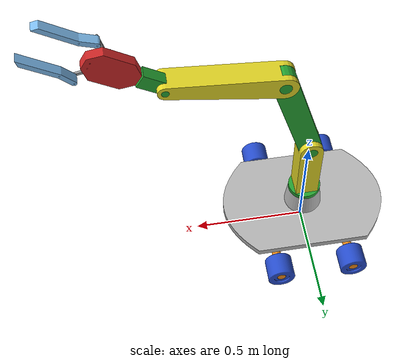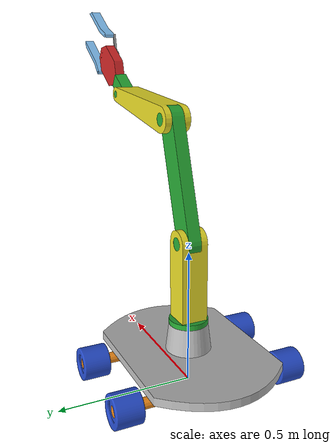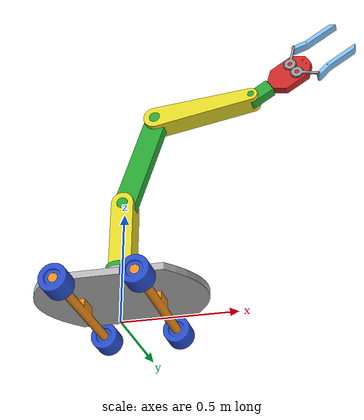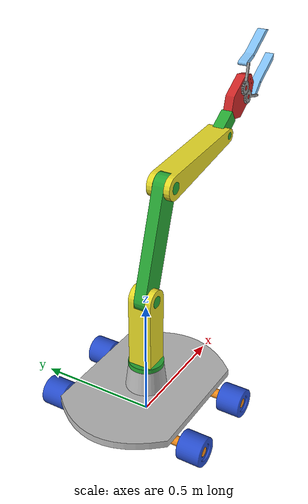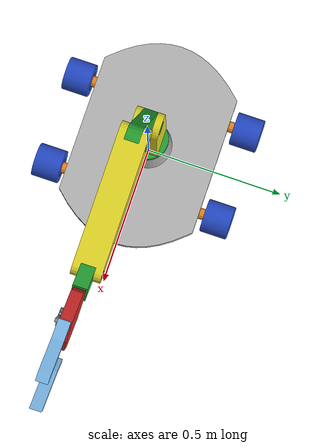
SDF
<sdf version='1.6'>
  <model name='bot_manipulator'>
    <link name='base_link'>
      <pose frame=''>0 0 0 0 -0 0</pose>
      <inertial>
        <pose frame=''>-1e-06 -0 0.115027 0 -0 0</pose>
        <mass>13.7757</mass>
        <inertia>
          <ixx>0.282538</ixx>
          <ixy>2.82691e-07</ixy>
          <ixz>-3.15508e-08</ixz>
          <iyy>0.453469</iyy>
          <iyz>8.6532e-08</iyz>
          <izz>0.707941</izz>
        </inertia>
      </inertial>
      <collision name='base_link_bot_collision'>
        <pose frame=''>0 0 0.1 0 -0 0</pose>
        <geometry>
          <mesh>
            <scale>1 1 1</scale>
            <uri>model://flip1_description/meshes/base_link_bot.STL</uri>
          </mesh>
        </geometry>
      </collision>
      <collision name='base_link_arm_collision_1'>
        <pose frame=''>0 0 0.13 0 -0 0</pose>
        <geometry>
          <mesh>
            <scale>1 1 1</scale>
            <uri>model://flip1_description/meshes/base_link_arm.STL</uri>
          </mesh>
        </geometry>
      </collision>
      <collision name='base_link_fixed_joint_lump__link1_collision_2'>
        <pose frame=''>0.16597 0.36 0.06 0 -0 0</pose>
        <geometry>
          <mesh>
            <scale>1 1 1</scale>
            <uri>model://flip1_description/meshes/link1.STL</uri>
          </mesh>
        </geometry>
        <surface>
          <contact>
            <ode/>
          </contact>
          <friction>
            <ode/>
          </friction>
        </surface>
      </collision>
      <collision name='base_link_fixed_joint_lump__link2_collision_3'>
        <pose frame=''>-0.16597 0.36 0.06 0 -0 0</pose>
        <geometry>
          <mesh>
            <scale>1 1 1</scale>
            <uri>model://flip1_description/meshes/link2.STL</uri>
          </mesh>
        </geometry>
        <surface>
          <contact>
            <ode/>
          </contact>
          <friction>
            <ode/>
          </friction>
        </surface>
      </collision>
      <visual name='base_link_bot_visual'>
        <pose frame=''>0 0 0.1 0 -0 0</pose>
        <geometry>
          <mesh>
            <scale>1 1 1</scale>
            <uri>model://flip1_description/meshes/base_link_bot.STL</uri>
          </mesh>
        </geometry>
      </visual>
      <visual name='base_link_arm_visual_1'>
        <pose frame=''>0 0 0.13 0 -0 0</pose>
        <geometry>
          <mesh>
            <scale>1 1 1</scale>
            <uri>model://flip1_description/meshes/base_link_arm.STL</uri>
          </mesh>
        </geometry>
      </visual>
      <visual name='base_link_fixed_joint_lump__link1_visual_2'>
        <pose frame=''>0.16597 0.36 0.06 0 -0 0</pose>
        <geometry>
          <mesh>
            <scale>1 1 1</scale>
            <uri>model://flip1_description/meshes/link1.STL</uri>
          </mesh>
        </geometry>
        <material>
          <script>
            <name>Gazebo/Orange</name>
            <uri>file://media/materials/scripts/gazebo.material</uri>
          </script>
        </material>
      </visual>
      <visual name='base_link_fixed_joint_lump__link2_visual_3'>
        <pose frame=''>-0.16597 0.36 0.06 0 -0 0</pose>
        <geometry>
          <mesh>
            <scale>1 1 1</scale>
            <uri>model://flip1_description/meshes/link2.STL</uri>
          </mesh>
        </geometry>
        <material>
          <script>
            <name>Gazebo/Orange</name>
            <uri>file://media/materials/scripts/gazebo.material</uri>
          </script>
        </material>
      </visual>
      <velocity_decay/>
      <velocity_decay/>
      <velocity_decay/>
      <gravity>1</gravity>
      <velocity_decay/>
      <self_collide>0</self_collide>
    </link>
    <link name='rotation_link'>
      <pose frame=''>0 0 0.21 0 -0 0.007562</pose>
      <inertial>
        <pose frame=''>0 0 0.157934 0 -0 0</pose>
        <mass>3.25564</mass>
        <inertia>
          <ixx>0.0337016</ixx>
          <ixy>2.3463e-19</ixy>
          <ixz>1.54429e-18</ixz>
          <iyy>0.0335546</iyy>
          <iyz>5.72319e-19</iyz>
          <izz>0.00594155</izz>
        </inertia>
      </inertial>
      <collision name='rotation_link_collision'>
        <pose frame=''>0 0 0 0 -0 0</pose>
        <geometry>
          <mesh>
            <scale>1 1 1</scale>
            <uri>model://flip1_description/meshes/rotation_link.STL</uri>
          </mesh>
        </geometry>
        <surface>
          <contact>
            <ode/>
          </contact>
          <friction>
            <ode/>
          </friction>
        </surface>
      </collision>
      <collision name='rotation_link_fixed_joint_lump__vertical_link_collision_1'>
        <pose frame=''>0 0 0.03 0 -0 0</pose>
        <geometry>
          <mesh>
            <scale>1 1 1</scale>
            <uri>model://flip1_description/meshes/vertical_link.STL</uri>
          </mesh>
        </geometry>
        <surface>
          <contact>
            <ode/>
          </contact>
          <friction>
            <ode/>
          </friction>
        </surface>
      </collision>
      <visual name='rotation_link_visual'>
        <pose frame=''>0 0 0 0 -0 0</pose>
        <geometry>
          <mesh>
            <scale>1 1 1</scale>
            <uri>model://flip1_description/meshes/rotation_link.STL</uri>
          </mesh>
        </geometry>
        <material>
          <script>
            <name>Gazebo/Green</name>
            <uri>file://media/materials/scripts/gazebo.material</uri>
          </script>
        </material>
      </visual>
      <visual name='rotation_link_fixed_joint_lump__vertical_link_visual_1'>
        <pose frame=''>0 0 0.03 0 -0 0</pose>
        <geometry>
          <mesh>
            <scale>1 1 1</scale>
            <uri>model://flip1_description/meshes/vertical_link.STL</uri>
          </mesh>
        </geometry>
        <material>
          <script>
            <name>Gazebo/Yellow</name>
            <uri>file://media/materials/scripts/gazebo.material</uri>
          </script>
        </material>
      </visual>
      <velocity_decay/>
      <gravity>1</gravity>
      <velocity_decay/>
      <self_collide>0</self_collide>
    </link>
    <joint name='base_rotation_joint' type='revolute'>
      <child>rotation_link</child>
      <parent>base_link</parent>
      <axis>
        <xyz>0 0 -1</xyz>
        <limit>
          <lower>-1e+16</lower>
          <upper>1e+16</upper>
        </limit>
        <dynamics>
          <spring_reference>0</spring_reference>
          <spring_stiffness>0</spring_stiffness>
        </dynamics>
        <use_parent_model_frame>1</use_parent_model_frame>
      </axis>
    </joint>
    <link name='middle_arm_link'>
      <pose frame=''>0 0 0.54 0 0.31039 0.007562</pose>
      <inertial>
        <pose frame=''>0 -0 0.225 0 -0 0</pose>
        <mass>2.839</mass>
        <inertia>
          <ixx>0.072652</ixx>
          <ixy>-5.421e-20</ixy>
          <ixz>-7.9676e-19</ixz>
          <iyy>0.073967</iyy>
          <iyz>9.8764e-19</iyz>
          <izz>0.002988</izz>
        </inertia>
      </inertial>
      <collision name='middle_arm_link_collision'>
        <pose frame=''>0 0 0 0 -0 0</pose>
        <geometry>
          <mesh>
            <scale>1 1 1</scale>
            <uri>model://flip1_description/meshes/middle_arm_link.STL</uri>
          </mesh>
        </geometry>
        <surface>
          <contact>
            <ode/>
          </contact>
          <friction>
            <ode/>
          </friction>
        </surface>
      </collision>
      <visual name='middle_arm_link_visual'>
        <pose frame=''>0 0 0 0 -0 0</pose>
        <geometry>
          <mesh>
            <scale>1 1 1</scale>
            <uri>model://flip1_description/meshes/middle_arm_link.STL</uri>
          </mesh>
        </geometry>
        <material>
          <script>
            <name>Gazebo/Green</name>
            <uri>file://media/materials/scripts/gazebo.material</uri>
          </script>
        </material>
      </visual>
      <gravity>1</gravity>
      <velocity_decay/>
      <self_collide>0</self_collide>
    </link>
    <joint name='vertical_middle_arm_joint' type='revolute'>
      <child>middle_arm_link</child>
      <parent>rotation_link</parent>
      <axis>
        <xyz>0.007562 -0.999971 -0</xyz>
        <limit>
          <lower>-3.14</lower>
          <upper>3.14</upper>
          <effort>25</effort>
          <velocity>1</velocity>
        </limit>
        <dynamics>
          <spring_reference>0</spring_reference>
          <spring_stiffness>0</spring_stiffness>
        </dynamics>
        <use_parent_model_frame>1</use_parent_model_frame>
      </axis>
    </joint>
    <link name='end_link'>
      <pose frame=''>0.13744 0.001039 0.968497 0 1.44299 0.007562</pose>
      <inertial>
        <pose frame=''>0 0 0.20744 0 -0 0</pose>
        <mass>3.4568</mass>
        <inertia>
          <ixx>0.060655</ixx>
          <ixy>7.1828e-19</ixy>
          <ixz>4.0707e-18</ixz>
          <iyy>0.059517</iyy>
          <iyz>-2.6631e-18</iyz>
          <izz>0.0051642</izz>
        </inertia>
      </inertial>
      <collision name='end_link_collision'>
        <pose frame=''>0 0 0 0 -0 0</pose>
        <geometry>
          <mesh>
            <scale>1 1 1</scale>
            <uri>model://flip1_description/meshes/end_link.STL</uri>
          </mesh>
        </geometry>
        <surface>
          <contact>
            <ode/>
          </contact>
          <friction>
            <ode/>
          </friction>
        </surface>
      </collision>
      <visual name='end_link_visual'>
        <pose frame=''>0 0 0 0 -0 0</pose>
        <geometry>
          <mesh>
            <scale>1 1 1</scale>
            <uri>model://flip1_description/meshes/end_link.STL</uri>
          </mesh>
        </geometry>
        <material>
          <script>
            <name>Gazebo/Yellow</name>
            <uri>file://media/materials/scripts/gazebo.material</uri>
          </script>
        </material>
      </visual>
      <gravity>1</gravity>
      <velocity_decay/>
      <self_collide>0</self_collide>
    </link>
    <joint name='middle_end_joint' type='revolute'>
      <child>end_link</child>
      <parent>middle_arm_link</parent>
      <axis>
        <xyz>-0.007562 0.999971 0</xyz>
        <limit>
          <lower>-3.14</lower>
          <upper>3.14</upper>
          <effort>25</effort>
          <velocity>1</velocity>
        </limit>
        <dynamics>
          <spring_reference>0</spring_reference>
          <spring_stiffness>0</spring_stiffness>
        </dynamics>
        <use_parent_model_frame>1</use_parent_model_frame>
      </axis>
    </joint>
    <link name='gripper_holder_link'>
      <pose frame=''>0.583757 0.004414 1.02585 0 1.0044 0.007562</pose>
      <inertial>
        <pose frame=''>0 0 0.031338 0 -0 0</pose>
        <mass>0.37775</mass>
        <inertia>
          <ixx>0.00058936</ixx>
          <ixy>8.8938e-21</ixy>
          <ixz>1.7754e-19</ixz>
          <iyy>0.00056849</iyy>
          <iyz>2.9434e-20</iyz>
          <izz>0.00023348</izz>
        </inertia>
      </inertial>
      <collision name='gripper_holder_link_collision'>
        <pose frame=''>0 0 0 0 -0 0</pose>
        <geometry>
          <mesh>
            <scale>1 1 1</scale>
            <uri>model://flip1_description/meshes/gripper_holder_link.STL</uri>
          </mesh>
        </geometry>
        <surface>
          <contact>
            <ode/>
          </contact>
          <friction>
            <ode/>
          </friction>
        </surface>
      </collision>
      <visual name='gripper_holder_link_visual'>
        <pose frame=''>0 0 0 0 -0 0</pose>
        <geometry>
          <mesh>
            <scale>1 1 1</scale>
            <uri>model://flip1_description/meshes/gripper_holder_link.STL</uri>
          </mesh>
        </geometry>
        <material>
          <script>
            <name>Gazebo/Green</name>
            <uri>file://media/materials/scripts/gazebo.material</uri>
          </script>
        </material>
      </visual>
      <gravity>1</gravity>
      <velocity_decay/>
      <self_collide>0</self_collide>
    </link>
    <joint name='gripper_holder_joint' type='revolute'>
      <child>gripper_holder_link</child>
      <parent>end_link</parent>
      <axis>
        <xyz>0.007562 -0.999971 0</xyz>
        <limit>
          <lower>-3.14</lower>
          <upper>3.14</upper>
          <effort>25</effort>
          <velocity>1</velocity>
        </limit>
        <dynamics>
          <spring_reference>0</spring_reference>
          <spring_stiffness>0</spring_stiffness>
        </dynamics>
        <use_parent_model_frame>1</use_parent_model_frame>
      </axis>
    </joint>
    <link name='base_link_gripper'>
      <pose frame=''>0.636917 0.004816 1.05966 1.57075 1.0044 0.007562</pose>
      <inertial>
        <pose frame=''>0 0.14142 0.00016 0 -0 0</pose>
        <mass>0.98099</mass>
        <inertia>
          <ixx>0.003388</ixx>
          <ixy>-1.1855e-19</ixy>
          <ixz>-1.5339e-20</ixz>
          <iyy>0.0012787</iyy>
          <iyz>-4.4891e-06</iyz>
          <izz>0.0044032</izz>
        </inertia>
      </inertial>
      <collision name='base_link_gripper_collision'>
        <pose frame=''>0 0 0 0 -0 0</pose>
        <geometry>
          <mesh>
            <scale>1 1 1</scale>
            <uri>model://flip1_description/meshes/base_link_gripper.STL</uri>
          </mesh>
        </geometry>
        <surface>
          <contact>
            <ode/>
          </contact>
          <friction>
            <ode/>
          </friction>
        </surface>
      </collision>
      <visual name='base_link_gripper_visual'>
        <pose frame=''>0 0 0 0 -0 0</pose>
        <geometry>
          <mesh>
            <scale>1 1 1</scale>
            <uri>model://flip1_description/meshes/base_link_gripper.STL</uri>
          </mesh>
        </geometry>
        <material>
          <script>
            <name>Gazebo/Red</name>
            <uri>file://media/materials/scripts/gazebo.material</uri>
          </script>
        </material>
      </visual>
      <gravity>1</gravity>
      <velocity_decay/>
      <self_collide>0</self_collide>
    </link>
    <joint name='manipulator_gripper_joint' type='revolute'>
      <child>base_link_gripper</child>
      <parent>gripper_holder_link</parent>
      <axis>
        <xyz>0.843816 0.006427 0.536595</xyz>
        <limit>
          <lower>-3.14</lower>
          <upper>3.14</upper>
          <effort>25</effort>
          <velocity>1</velocity>
        </limit>
        <dynamics>
          <spring_reference>0</spring_reference>
          <spring_stiffness>0</spring_stiffness>
        </dynamics>
        <use_parent_model_frame>1</use_parent_model_frame>
      </axis>
    </joint>
    <link name='gear1_link'>
      <pose frame=''>0.7658 -0.019202 1.17409 1.57077 0.21867 0.007596</pose>
      <inertial>
        <pose frame=''>-0 0.017586 0 0 -0 0</pose>
        <mass>0.02723</mass>
        <inertia>
          <ixx>3.02981e-05</ixx>
          <ixy>1.69407e-21</ixy>
          <ixz>7.49263e-22</ixz>
          <iyy>4.50525e-06</iyy>
          <iyz>1.54009e-21</iyz>
          <izz>3.43495e-05</izz>
        </inertia>
      </inertial>
      <collision name='gear1_link_collision'>
        <pose frame=''>0 0 0 0 -0 0</pose>
        <geometry>
          <mesh>
            <scale>1 1 1</scale>
            <uri>model://flip1_description/meshes/gear1_link.STL</uri>
          </mesh>
        </geometry>
        <surface>
          <contact>
            <ode/>
          </contact>
          <friction>
            <ode/>
          </friction>
        </surface>
      </collision>
      <visual name='gear1_link_visual'>
        <pose frame=''>0 0 0 0 -0 0</pose>
        <geometry>
          <mesh>
            <scale>1 1 1</scale>
            <uri>model://flip1_description/meshes/gear1_link.STL</uri>
          </mesh>
        </geometry>
        <material>
          <script>
            <name>Gazebo/Grey</name>
            <uri>file://media/materials/scripts/gazebo.material</uri>
          </script>
        </material>
      </visual>
      <gravity>1</gravity>
      <velocity_decay/>
      <self_collide>0</self_collide>
    </link>
    <joint name='base_gear1_joint' type='revolute'>
      <child>gear1_link</child>
      <parent>base_link_gripper</parent>
      <axis>
        <xyz>0.007601 -0.999971 2.5e-05</xyz>
        <limit>
          <lower>-3.14</lower>
          <upper>3.14</upper>
          <effort>25</effort>
          <velocity>1</velocity>
        </limit>
        <dynamics>
          <spring_reference>0</spring_reference>
          <spring_stiffness>0</spring_stiffness>
        </dynamics>
        <use_parent_model_frame>1</use_parent_model_frame>
      </axis>
    </joint>
    <link name='finger_gear1_link'>
      <pose frame=''>0.787193 0.005964 1.27121 1.57083 -0.999063 -3.13403</pose>
      <inertial>
        <pose frame=''>-0.012289 0.101 0 0 -0 0</pose>
        <mass>0.17145</mass>
        <inertia>
          <ixx>0.0007122</ixx>
          <ixy>4.0775e-05</ixy>
          <ixz>4.039e-21</ixz>
          <iyy>3.2189e-05</iyy>
          <iyz>-6.5264e-21</iyz>
          <izz>0.00069867</izz>
        </inertia>
      </inertial>
      <collision name='finger_gear1_link_collision'>
        <pose frame=''>0 0 0 0 -0 0</pose>
        <geometry>
          <mesh>
            <scale>1 1 1</scale>
            <uri>model://flip1_description/meshes/finger_gear1_link.STL</uri>
          </mesh>
        </geometry>
        <surface>
          <contact>
            <ode/>
          </contact>
          <friction>
            <ode/>
          </friction>
        </surface>
      </collision>
      <visual name='finger_gear1_link_visual'>
        <pose frame=''>0 0 0 0 -0 0</pose>
        <geometry>
          <mesh>
            <scale>1 1 1</scale>
            <uri>model://flip1_description/meshes/finger_gear1_link.STL</uri>
          </mesh>
        </geometry>
        <material>
          <script>
            <name>Gazebo/SkyBlue</name>
            <uri>file://media/materials/scripts/gazebo.material</uri>
          </script>
        </material>
      </visual>
      <gravity>1</gravity>
      <velocity_decay/>
      <self_collide>0</self_collide>
    </link>
    <joint name='finger_gear1_joint' type='revolute'>
      <child>finger_gear1_link</child>
      <parent>gear1_link</parent>
      <axis>
        <xyz>0.007595 -0.999971 2.1e-05</xyz>
        <limit>
          <lower>-3.14</lower>
          <upper>3.14</upper>
          <effort>25</effort>
          <velocity>1</velocity>
        </limit>
        <dynamics>
          <spring_reference>0</spring_reference>
          <spring_stiffness>0</spring_stiffness>
        </dynamics>
        <use_parent_model_frame>1</use_parent_model_frame>
      </axis>
    </joint>
    <link name='gear2_link'>
      <pose frame=''>0.795312 -0.018979 1.12767 -1.57068 1.35146 -3.13388</pose>
      <inertial>
        <pose frame=''>4e-06 0.017789 0 0 -0 0</pose>
        <mass>0.02723</mass>
        <inertia>
          <ixx>3.06267e-05</ixx>
          <ixy>-1.15574e-09</ixy>
          <ixz>-1.4166e-21</ixz>
          <iyy>4.48316e-06</iyy>
          <iyz>4.26144e-22</iyz>
          <izz>3.46553e-05</izz>
        </inertia>
      </inertial>
      <collision name='gear2_link_collision'>
        <pose frame=''>0 0 0 0 -0 0</pose>
        <geometry>
          <mesh>
            <scale>1 1 1</scale>
            <uri>model://flip1_description/meshes/gear2_link.STL</uri>
          </mesh>
        </geometry>
        <surface>
          <contact>
            <ode/>
          </contact>
          <friction>
            <ode/>
          </friction>
        </surface>
      </collision>
      <visual name='gear2_link_visual'>
        <pose frame=''>0 0 0 0 -0 0</pose>
        <geometry>
          <mesh>
            <scale>1 1 1</scale>
            <uri>model://flip1_description/meshes/gear2_link.STL</uri>
          </mesh>
        </geometry>
        <material>
          <script>
            <name>Gazebo/Grey</name>
            <uri>file://media/materials/scripts/gazebo.material</uri>
          </script>
        </material>
      </visual>
      <gravity>1</gravity>
      <velocity_decay/>
      <self_collide>0</self_collide>
    </link>
    <joint name='base_gear2_joint' type='revolute'>
      <child>gear2_link</child>
      <parent>base_link_gripper</parent>
      <axis>
        <xyz>-0.007601 0.999971 -2.5e-05</xyz>
        <limit>
          <lower>-3.14</lower>
          <upper>3.14</upper>
          <effort>25</effort>
          <velocity>1</velocity>
        </limit>
        <dynamics>
          <spring_reference>0</spring_reference>
          <spring_stiffness>0</spring_stiffness>
        </dynamics>
        <use_parent_model_frame>1</use_parent_model_frame>
      </axis>
    </joint>
    <link name='finger_gear2_link'>
      <pose frame=''>0.892723 0.006762 1.10592 1.57075 1.00024 0.007562</pose>
      <inertial>
        <pose frame=''>-0.012289 0.101 -0 0 -0 0</pose>
        <mass>0.17145</mass>
        <inertia>
          <ixx>0.0007122</ixx>
          <ixy>4.0775e-05</ixy>
          <ixz>-3.8232e-21</ixz>
          <iyy>3.2189e-05</iyy>
          <iyz>5.6109e-21</iyz>
          <izz>0.00069867</izz>
        </inertia>
      </inertial>
      <collision name='finger_gear2_link_collision'>
        <pose frame=''>0 0 0 0 -0 0</pose>
        <geometry>
          <mesh>
            <scale>1 1 1</scale>
            <uri>model://flip1_description/meshes/finger_gear2_link.STL</uri>
          </mesh>
        </geometry>
        <surface>
          <contact>
            <ode/>
          </contact>
          <friction>
            <ode/>
          </friction>
        </surface>
      </collision>
      <visual name='finger_gear2_link_visual'>
        <pose frame=''>0 0 0 0 -0 0</pose>
        <geometry>
          <mesh>
            <scale>1 1 1</scale>
            <uri>model://flip1_description/meshes/finger_gear2_link.STL</uri>
          </mesh>
        </geometry>
        <material>
          <script>
            <name>Gazebo/SkyBlue</name>
            <uri>file://media/materials/scripts/gazebo.material</uri>
          </script>
        </material>
      </visual>
      <gravity>1</gravity>
      <velocity_decay/>
      <self_collide>0</self_collide>
    </link>
    <joint name='finger_gear2_joint' type='revolute'>
      <child>finger_gear2_link</child>
      <parent>gear2_link</parent>
      <axis>
        <xyz>-0.007601 0.999971 -2.5e-05</xyz>
        <limit>
          <lower>-3.14</lower>
          <upper>3.14</upper>
          <effort>25</effort>
          <velocity>1</velocity>
        </limit>
        <dynamics>
          <spring_reference>0</spring_reference>
          <spring_stiffness>0</spring_stiffness>
        </dynamics>
        <use_parent_model_frame>1</use_parent_model_frame>
      </axis>
    </joint>
    <link name='link3'>
      <pose frame=''>0.16597 0.318256 0.06 0 -0 0</pose>
      <inertial>
        <pose frame=''>0 -0 0 0 -0 0</pose>
        <mass>0.95841</mass>
        <inertia>
          <ixx>0.00172</ixx>
          <ixy>6.5405e-20</ixy>
          <ixz>7.1492e-20</ixz>
          <iyy>0.0019649</iyy>
          <iyz>-1.0822e-19</iyz>
          <izz>0.00172</izz>
        </inertia>
      </inertial>
      <collision name='link3_collision'>
        <pose frame=''>0 0 0 0 -0 0</pose>
        <geometry>
          <mesh>
            <scale>1 1 1</scale>
            <uri>model://flip1_description/meshes/link3.STL</uri>
          </mesh>
        </geometry>
        <surface>
          <contact>
            <ode/>
          </contact>
          <friction>
            <ode/>
          </friction>
        </surface>
      </collision>
      <visual name='link3_visual'>
        <pose frame=''>0 0 0 0 -0 0</pose>
        <geometry>
          <mesh>
            <scale>1 1 1</scale>
            <uri>model://flip1_description/meshes/link3.STL</uri>
          </mesh>
        </geometry>
        <material>
          <script>
            <name>Gazebo/Blue</name>
            <uri>file://media/materials/scripts/gazebo.material</uri>
          </script>
        </material>
      </visual>
      <gravity>1</gravity>
      <velocity_decay/>
      <self_collide>0</self_collide>
    </link>
    <joint name='joint3' type='revolute'>
      <child>link3</child>
      <parent>base_link</parent>
      <axis>
        <xyz>0 1 0</xyz>
        <limit>
          <lower>-1e+16</lower>
          <upper>1e+16</upper>
        </limit>
        <dynamics>
          <spring_reference>0</spring_reference>
          <spring_stiffness>0</spring_stiffness>
        </dynamics>
        <use_parent_model_frame>1</use_parent_model_frame>
      </axis>
    </joint>
    <link name='link4'>
      <pose frame=''>0.16597 -0.31826 0.06 0 -0 0</pose>
      <inertial>
        <pose frame=''>0 -0 0 0 -0 0</pose>
        <mass>0.95841</mass>
        <inertia>
          <ixx>0.00172</ixx>
          <ixy>3.8103e-20</ixy>
          <ixz>7.1492e-20</ixz>
          <iyy>0.0019649</iyy>
          <iyz>-8.0921e-20</iyz>
          <izz>0.00172</izz>
        </inertia>
      </inertial>
      <collision name='link4_collision'>
        <pose frame=''>0 0 0 0 -0 0</pose>
        <geometry>
          <mesh>
            <scale>1 1 1</scale>
            <uri>model://flip1_description/meshes/link4.STL</uri>
          </mesh>
        </geometry>
        <surface>
          <contact>
            <ode/>
          </contact>
          <friction>
            <ode/>
          </friction>
        </surface>
      </collision>
      <visual name='link4_visual'>
        <pose frame=''>0 0 0 0 -0 0</pose>
        <geometry>
          <mesh>
            <scale>1 1 1</scale>
            <uri>model://flip1_description/meshes/link4.STL</uri>
          </mesh>
        </geometry>
        <material>
          <script>
            <name>Gazebo/Blue</name>
            <uri>file://media/materials/scripts/gazebo.material</uri>
          </script>
        </material>
      </visual>
      <gravity>1</gravity>
      <velocity_decay/>
      <self_collide>0</self_collide>
    </link>
    <joint name='joint4' type='revolute'>
      <child>link4</child>
      <parent>base_link</parent>
      <axis>
        <xyz>0 1 0</xyz>
        <limit>
          <lower>-1e+16</lower>
          <upper>1e+16</upper>
        </limit>
        <dynamics>
          <spring_reference>0</spring_reference>
          <spring_stiffness>0</spring_stiffness>
        </dynamics>
        <use_parent_model_frame>1</use_parent_model_frame>
      </axis>
    </joint>
    <link name='link5'>
      <pose frame=''>-0.16597 0.318256 0.06 0 0.082724 0</pose>
      <inertial>
        <pose frame=''>0 -0 0 0 -0 0</pose>
        <mass>0.95841</mass>
        <inertia>
          <ixx>0.00172004</ixx>
          <ixy>9.19912e-22</ixy>
          <ixz>5.42101e-20</ixz>
          <iyy>0.00196493</iyy>
          <iyz>-9.05839e-20</iyz>
          <izz>0.00172004</izz>
        </inertia>
      </inertial>
      <collision name='link5_collision'>
        <pose frame=''>0 0 0 0 -0 0</pose>
        <geometry>
          <mesh>
            <scale>1 1 1</scale>
            <uri>model://flip1_description/meshes/link5.STL</uri>
          </mesh>
        </geometry>
        <surface>
          <contact>
            <ode/>
          </contact>
          <friction>
            <ode/>
          </friction>
        </surface>
      </collision>
      <visual name='link5_visual'>
        <pose frame=''>0 0 0 0 -0 0</pose>
        <geometry>
          <mesh>
            <scale>1 1 1</scale>
            <uri>model://flip1_description/meshes/link5.STL</uri>
          </mesh>
        </geometry>
        <material>
          <script>
            <name>Gazebo/Blue</name>
            <uri>file://media/materials/scripts/gazebo.material</uri>
          </script>
        </material>
      </visual>
      <gravity>1</gravity>
      <velocity_decay/>
      <self_collide>0</self_collide>
    </link>
    <joint name='joint5' type='revolute'>
      <child>link5</child>
      <parent>base_link</parent>
      <axis>
        <xyz>0 1 0</xyz>
        <limit>
          <lower>-1e+16</lower>
          <upper>1e+16</upper>
        </limit>
        <dynamics>
          <spring_reference>0</spring_reference>
          <spring_stiffness>0</spring_stiffness>
        </dynamics>
        <use_parent_model_frame>1</use_parent_model_frame>
      </axis>
    </joint>
    <link name='link6'>
      <pose frame=''>-0.16597 -0.31826 0.06 0 -0.55404 0</pose>
      <inertial>
        <pose frame=''>0 -0 0 0 -0 0</pose>
        <mass>0.95841</mass>
        <inertia>
          <ixx>0.00172</ixx>
          <ixy>-1.7049e-20</ixy>
          <ixz>2.1684e-19</ixz>
          <iyy>0.0019649</iyy>
          <iyz>-9.2729e-20</iyz>
          <izz>0.00172</izz>
        </inertia>
      </inertial>
      <collision name='link6_collision'>
        <pose frame=''>0 0 0 0 -0 0</pose>
        <geometry>
          <mesh>
            <scale>1 1 1</scale>
            <uri>model://flip1_description/meshes/link6.STL</uri>
          </mesh>
        </geometry>
        <surface>
          <contact>
            <ode/>
          </contact>
          <friction>
            <ode/>
          </friction>
        </surface>
      </collision>
      <visual name='link6_visual'>
        <pose frame=''>0 0 0 0 -0 0</pose>
        <geometry>
          <mesh>
            <scale>1 1 1</scale>
            <uri>model://flip1_description/meshes/link6.STL</uri>
          </mesh>
        </geometry>
        <material>
          <script>
            <name>Gazebo/Blue</name>
            <uri>file://media/materials/scripts/gazebo.material</uri>
          </script>
        </material>
      </visual>
      <gravity>1</gravity>
      <velocity_decay/>
      <self_collide>0</self_collide>
    </link>
    <joint name='joint6' type='revolute'>
      <child>link6</child>
      <parent>base_link</parent>
      <axis>
        <xyz>0 1 0</xyz>
        <limit>
          <lower>-1e+16</lower>
          <upper>1e+16</upper>
        </limit>
        <dynamics>
          <spring_reference>0</spring_reference>
          <spring_stiffness>0</spring_stiffness>
        </dynamics>
        <use_parent_model_frame>1</use_parent_model_frame>
      </axis>
    </joint>
  </model>
</sdf>
